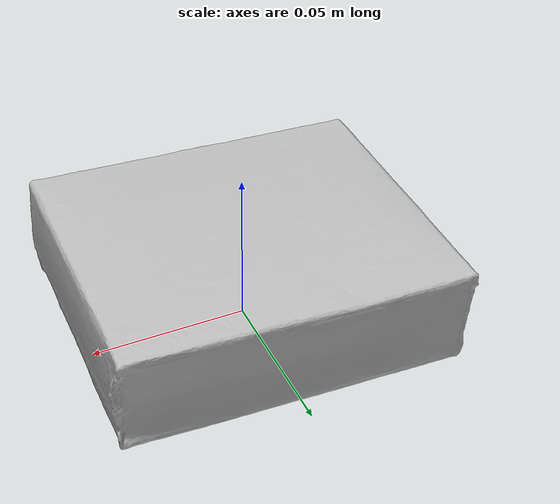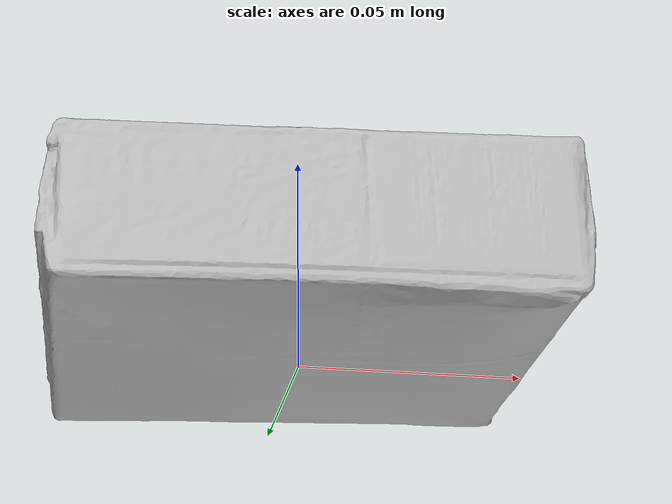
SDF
<?xml version="1.0"?>
<sdf version="1.6">
  <model name="pudding_box">
    <link name="link">
      <inertial>
        <mass>0.187</mass>
      </inertial>
      <collision name="collision">
        <pose>0 0 0.0175 0 0 0</pose>
        <geometry>
          <box>
            <size>0.110 0.089 0.035</size>
          </box>
        </geometry>
      </collision>
      <visual name="visual">
        <pose>-0.01 -0.015 0 0 0 -0.5</pose>
        <geometry>
          <mesh>
            <uri>model://pudding_box/meshes/textured.dae</uri>
          </mesh>
        </geometry>
      </visual>
    </link>
  </model>
</sdf>
